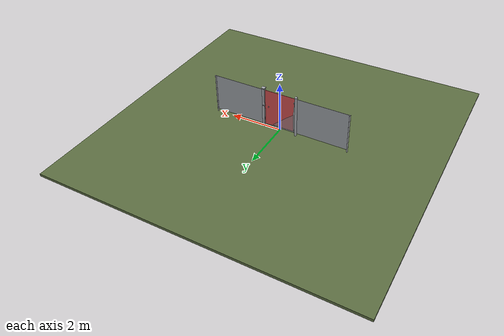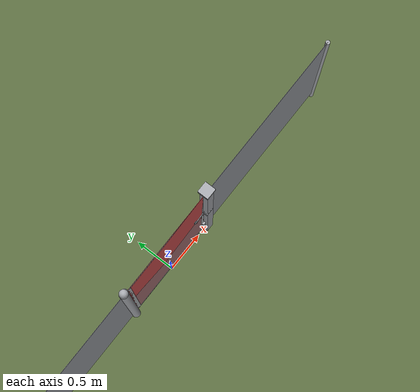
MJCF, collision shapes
<?xml version="1.0" ?>
<mujoco model="db0106_gate_swing_full">
  <compiler angle="radian" meshdir="../../hardware" texturedir="../../textures" autolimits="true" inertiafromgeom="false"/>
  <option timestep="0.002" integrator="implicitfast" cone="elliptic" impratio="10" noslip_iterations="3">
    <flag multiccd="enable"/>
  </option>
  <size memory="16M"/>
  <default>
    <geom condim="4" solref="0.005 1" solimp="0.95 0.99 0.001"/>
    <joint solreflimit="0.005 1" solimplimit="0.95 0.99 0.001"/>
    <tendon solreflimit="0.005 1"/>
    <equality solref="0.002 1"/>
  </default>
  <visual>
    <headlight ambient="0.4 0.4 0.4" diffuse="0.7 0.7 0.7" specular="0.2 0.2 0.2"/>
    <quality shadowsize="4096"/>
    <map znear="0.01" zfar="60"/>
  </visual>
  <asset>
    <mesh name="strap_hinge_3c1a7c1a5f" file="strap_hinge_3c1a7c1a5f.obj"/>
    <material name="mat_floor" rgba="0.35 0.42 0.25 1" specular="0.2" shininess="0.15" reflectance="0"/>
    <material name="mat_wall" rgba="0.78 0.76 0.7 1" specular="0.2" shininess="0.1" reflectance="0"/>
    <material name="mat_leaf" rgba="0.7 0.71 0.72 1" specular="0.74" shininess="0.5" reflectance="0.36"/>
    <material name="mat_mesh_infill" rgba="0.6 0.62 0.64 0.55" specular="0.68" shininess="0.3" reflectance="0.1"/>
    <material name="mat_hinge" rgba="0.65 0.66 0.68 1" specular="0.74" shininess="0.5" reflectance="0.36"/>
    <material name="mat_op_steel_galvanized" rgba="0.65 0.66 0.68 1" specular="0.74" shininess="0.5" reflectance="0.36"/>
    <material name="mat_frame" rgba="0.65 0.66 0.68 1" specular="0.74" shininess="0.5" reflectance="0.36"/>
    <material name="mat_fence_mesh" rgba="0.6 0.62 0.64 0.5" specular="0.68" shininess="0.3" reflectance="0.1"/>
    <texture name="skybox" type="skybox" builtin="gradient" rgb1="0.6 0.7 0.85" rgb2="0.9 0.92 0.95" width="256" height="256"/>
  </asset>
  <worldbody>
    <light name="sun" pos="1.5 -2.5 4" dir="-0.3 0.5 -0.8" directional="true" diffuse="0.8 0.8 0.8" specular="0.3 0.3 0.3" castshadow="true"/>
    <light name="fill" pos="-1.5 2.5 3" dir="0.3 -0.5 -0.7" directional="true" diffuse="0.35 0.35 0.4" castshadow="false"/>
    <camera name="robot_view" pos="0 -2.05 1.334" xyaxes="1 0 0 0 0.26963 0.962964" fovy="52"/>
    <camera name="far_view" pos="0 2.05 1.334" xyaxes="-1 0 0 0 -0.26963 0.962964" fovy="52"/>
    <camera name="iso" pos="1.558 -1.722 1.662" xyaxes="0.741536 0.670913 0 -0.242917 0.268487 0.932151" fovy="46"/>
    <camera name="detail_handle" pos="0.766 -0.8135 1.285" xyaxes="0.97561 0.219512 0 -0.070934 0.315262 0.94635" fovy="38"/>
    <geom name="floor" type="box" size="6 6 0.05" pos="0 0 -0.05" material="mat_floor" group="0" contype="1" conaffinity="1" friction="0.8 0.005 0.0001" density="2400"/>
    <geom name="hinge_pintle_0" type="cylinder" size="0.008 0.02" pos="-0.603 0.05 0.224" material="mat_hinge" group="1" contype="0" conaffinity="0" density="7850"/>
    <geom name="hinge_pintle_1" type="cylinder" size="0.008 0.02" pos="-0.603 0.05 1.424" material="mat_hinge" group="1" contype="0" conaffinity="0" density="7850"/>
    <geom name="post_hinge" type="cylinder" size="0.05 0.825" pos="-0.656 0 0.825" material="mat_frame" group="0" contype="1" conaffinity="1" friction="0.6 0.005 0.0001" density="800"/>
    <geom name="post_hinge_cap" type="sphere" size="0.05" pos="-0.656 0 1.65" material="mat_frame" group="1" contype="0" conaffinity="0" density="800"/>
    <geom name="post_latch" type="box" size="0.05 0.05 0.825" pos="0.656 0 0.825" material="mat_frame" group="0" contype="1" conaffinity="1" friction="0.6 0.005 0.0001" density="800"/>
    <geom name="post_latch_cap" type="box" size="0.065 0.065 0.02" pos="0.656 0 1.67" material="mat_frame" group="1" contype="0" conaffinity="0" density="800"/>
    <geom name="gate_stop" type="box" size="0.02 0.012 0.06" pos="0.586 -0.0135 0.35" material="mat_frame" group="0" contype="1" conaffinity="1" friction="0.6 0.005 0.0001" density="800"/>
    <geom name="fence_l" type="box" size="1 0.002 0.75" pos="-1.706 0 0.85" material="mat_fence_mesh" group="0" contype="1" conaffinity="1" friction="0.6 0.005 0.0001" density="100"/>
    <geom name="fence_post_l" type="cylinder" size="0.025 0.8" pos="-2.706 0 0.8" material="mat_frame" group="0" contype="1" conaffinity="1" friction="0.6 0.005 0.0001" density="7850"/>
    <geom name="fence_r" type="box" size="1 0.002 0.75" pos="1.706 0 0.85" material="mat_fence_mesh" group="0" contype="1" conaffinity="1" friction="0.6 0.005 0.0001" density="100"/>
    <geom name="fence_post_r" type="cylinder" size="0.025 0.8" pos="2.706 0 0.8" material="mat_frame" group="0" contype="1" conaffinity="1" friction="0.6 0.005 0.0001" density="7850"/>
    <geom name="gate_stop_strap_0" type="box" size="0.0505 0.01255 0.048" pos="0.656 -0.01055 0.35" material="mat_frame" group="1" contype="0" conaffinity="0" density="7850"/>
    <site name="approach_point" pos="0 -1.5 0" quat="1 0 0 0" size="0.05" rgba="0.2 0.9 0.2 0.5" group="4"/>
    <site name="goal_point" pos="0 1.5 0" quat="1 0 0 0" size="0.05" rgba="0.2 0.9 0.2 0.5" group="4"/>
    <site name="door_plane_center" pos="0 0 0.76" quat="1 0 0 0" size="0.02" rgba="0.2 0.9 0.2 0.5" group="4"/>
    <body name="leaf" pos="-0.606 0 0">
      <inertial pos="0.494435 0.003087 0.851476" mass="5.963237" quat="0.505624 0.50076 -0.499233 0.494317" diaginertia="0.919388408 1.309462714 2.227781273"/>
      <joint name="leaf_hinge" type="hinge" axis="0 0 1" pos="0.003 0.05 0" limited="true" range="0 1.745329" damping="1.561738" frictionloss="3.348553" stiffness="5" springref="-0.870624" armature="0.02"/>
      <geom name="leaf_slab_col" type="box" size="0.6 0.0015 0.75" pos="0.603 0 0.85" material="mat_leaf" group="3" contype="1" conaffinity="1" rgba="0.8 0.3 0.3 0.25" friction="0.45 0.005 0.0001" density="1"/>
      <geom name="leaf_rail_b" type="box" size="0.6 0.0015 0.0225" pos="0.603 0 0.1225" material="mat_leaf" group="1" contype="0" conaffinity="0" density="1"/>
      <geom name="leaf_rail_t" type="box" size="0.6 0.0015 0.0225" pos="0.603 0 1.5775" material="mat_leaf" group="1" contype="0" conaffinity="0" density="1"/>
      <geom name="leaf_stile_h" type="box" size="0.0225 0.0015 0.75" pos="0.0255 0 0.85" material="mat_leaf" group="1" contype="0" conaffinity="0" density="1"/>
      <geom name="leaf_stile_l" type="box" size="0.0225 0.0015 0.75" pos="1.1805 0 0.85" material="mat_leaf" group="1" contype="0" conaffinity="0" density="1"/>
      <geom name="leaf_mesh" type="box" size="0.555 0.0015 0.705" pos="0.603 0 0.85" material="mat_mesh_infill" group="1" contype="0" conaffinity="0" density="1"/>
      <geom name="hinge_strap_0" type="mesh" mesh="strap_hinge_3c1a7c1a5f" pos="0.003 0.0045 0.25" material="mat_hinge" group="1" contype="0" conaffinity="0" density="7850"/>
      <geom name="hinge_strap_eye_0" type="cylinder" size="0.011 0.012" pos="0.003 0.05 0.25" material="mat_hinge" group="1" contype="0" conaffinity="0" density="7850"/>
      <geom name="hinge_strap_neck_0" type="box" size="0.012 0.02675 0.006" pos="0.003 0.02725 0.25" material="mat_hinge" group="1" contype="0" conaffinity="0" density="7850"/>
      <geom name="hinge_strap_1" type="mesh" mesh="strap_hinge_3c1a7c1a5f" pos="0.003 0.0045 1.45" material="mat_hinge" group="1" contype="0" conaffinity="0" density="7850"/>
      <geom name="hinge_strap_eye_1" type="cylinder" size="0.011 0.012" pos="0.003 0.05 1.45" material="mat_hinge" group="1" contype="0" conaffinity="0" density="7850"/>
      <geom name="hinge_strap_neck_1" type="box" size="0.012 0.02675 0.006" pos="0.003 0.02725 1.45" material="mat_hinge" group="1" contype="0" conaffinity="0" density="7850"/>
      <geom name="leaf_fork_strap_n" type="box" size="0.02 0.002 0.03" pos="1.063 -0.0035 0.9" material="mat_op_steel_galvanized" group="1" contype="0" conaffinity="0" density="7800"/>
      <geom name="leaf_fork_strap_p" type="box" size="0.02 0.002 0.03" pos="1.063 0.0035 0.9" material="mat_op_steel_galvanized" group="1" contype="0" conaffinity="0" density="7800"/>
      <geom name="leaf_fork_pin" type="cylinder" size="0.005 0.0135" pos="1.063 -0.008 0.9" quat="0.707107 -0.707107 0 0" material="mat_op_steel_galvanized" group="1" contype="0" conaffinity="0" density="7800"/>
      <site name="leaf_edge_mid" pos="1.203 0 0.75" quat="1 0 0 0" size="0.02" rgba="0.2 0.9 0.2 0.5" group="4"/>
      <body name="leaf_fork" pos="1.063 0 0.9">
        <inertial pos="0.117177 -0.005635 0.04089" mass="0.225763" quat="0.989191 -0.012889 -0.132412 0.061654" diaginertia="0.000367818 0.00094173 0.001231332"/>
        <joint name="leaf_fork_hinge" type="hinge" axis="0 -1 0" limited="true" range="0 1.2" damping="0.037477" frictionloss="0.006367" armature="0.0001"/>
        <geom name="leaf_fork_arm" type="box" size="0.069176 0.004 0.012" pos="0.0645 -0.0135 0.025" quat="0.982958 0 -0.183833 0" material="mat_op_steel_galvanized" group="0" contype="1" conaffinity="1" friction="0.6 0.005 0.0001" density="2500"/>
        <geom name="leaf_fork_eye" type="cylinder" size="0.014 0.005" pos="0 -0.0135 0" quat="0.707107 -0.707107 0 0" material="mat_op_steel_galvanized" group="1" contype="0" conaffinity="0" density="2500"/>
        <geom name="leaf_fork_tine_n" type="box" size="0.05 0.003 0.012" pos="0.179 -0.059 0.05" material="mat_op_steel_galvanized" group="0" contype="1" conaffinity="1" friction="0.6 0.005 0.0001" density="2500"/>
        <geom name="leaf_fork_tine_p" type="box" size="0.05 0.003 0.012" pos="0.179 0.059 0.05" material="mat_op_steel_galvanized" group="0" contype="1" conaffinity="1" friction="0.6 0.005 0.0001" density="2500"/>
        <geom name="leaf_fork_bridge" type="box" size="0.004 0.062 0.012" pos="0.129 0 0.05" material="mat_op_steel_galvanized" group="0" contype="1" conaffinity="1" friction="0.6 0.005 0.0001" density="2500"/>
        <geom name="leaf_fork_handle" type="capsule" size="0.006 0.018" pos="0.129 -0.0135 0.08" material="mat_op_steel_galvanized" group="0" contype="1" conaffinity="1" friction="0.7 0.01 0.0001" density="2500"/>
        <site name="leaf_fork_grip" pos="0.129 -0.0135 0.105" quat="1 0 0 0" size="0.012" rgba="0.2 0.9 0.2 0.5" group="4"/>
      </body>
    </body>
  </worldbody>
  <sensor>
    <jointpos name="leaf_hinge_pos" joint="leaf_hinge"/>
    <jointvel name="leaf_hinge_vel" joint="leaf_hinge"/>
    <jointpos name="leaf_fork_hinge_pos" joint="leaf_fork_hinge"/>
    <jointvel name="leaf_fork_hinge_vel" joint="leaf_fork_hinge"/>
  </sensor>
</mujoco>
